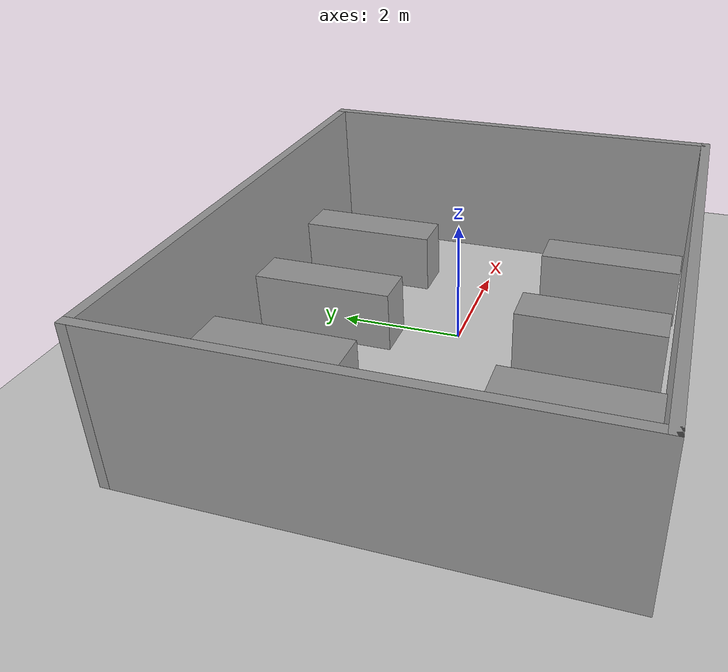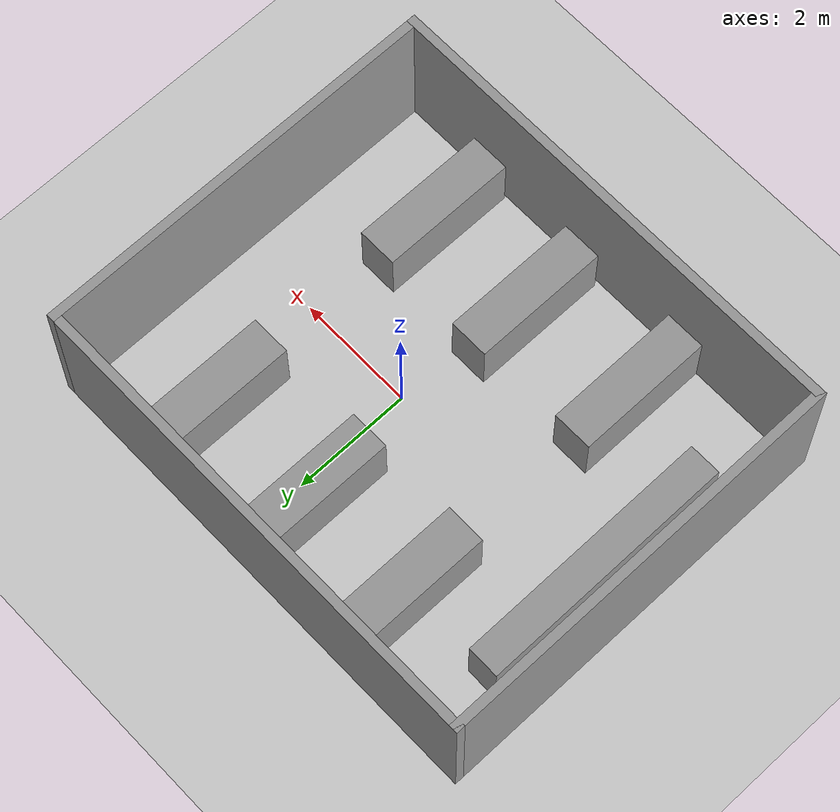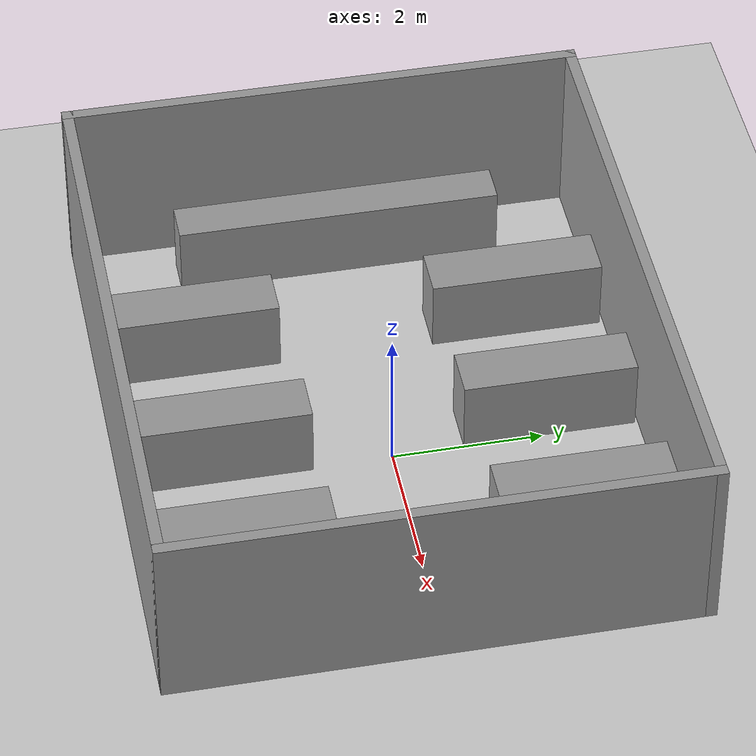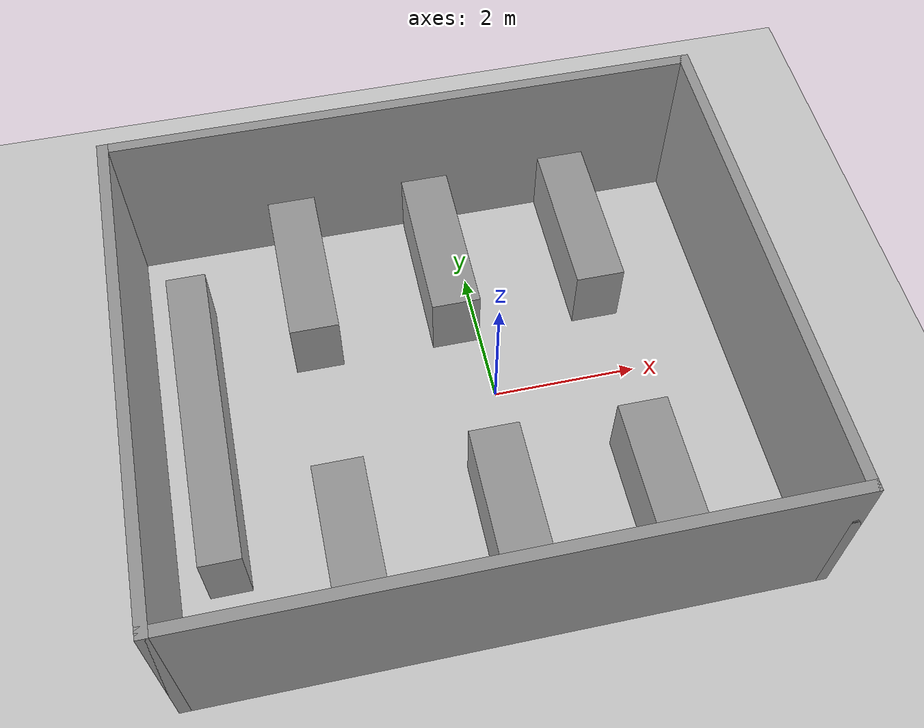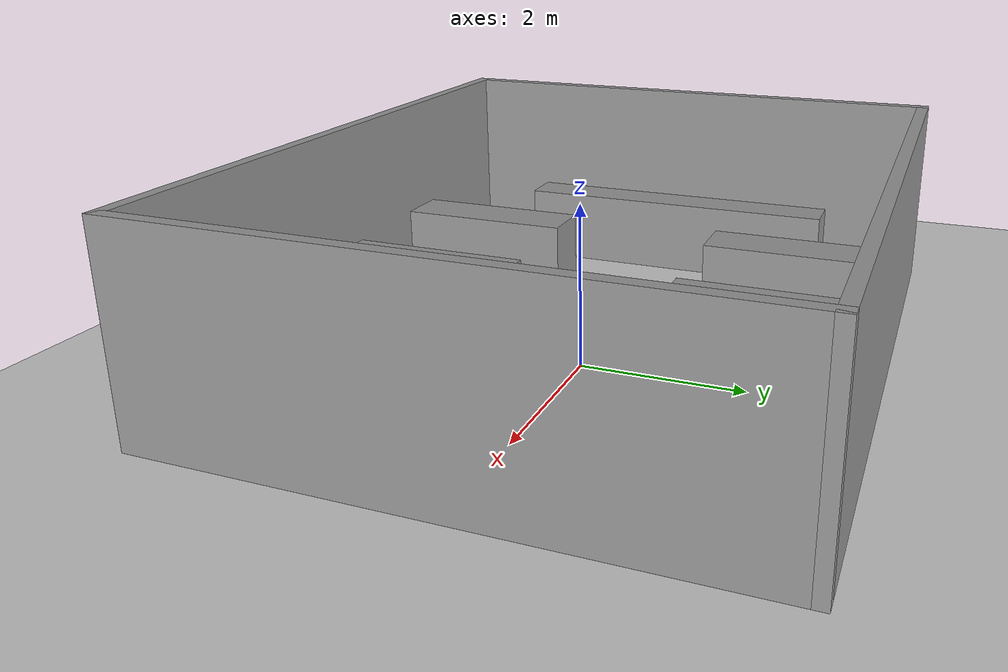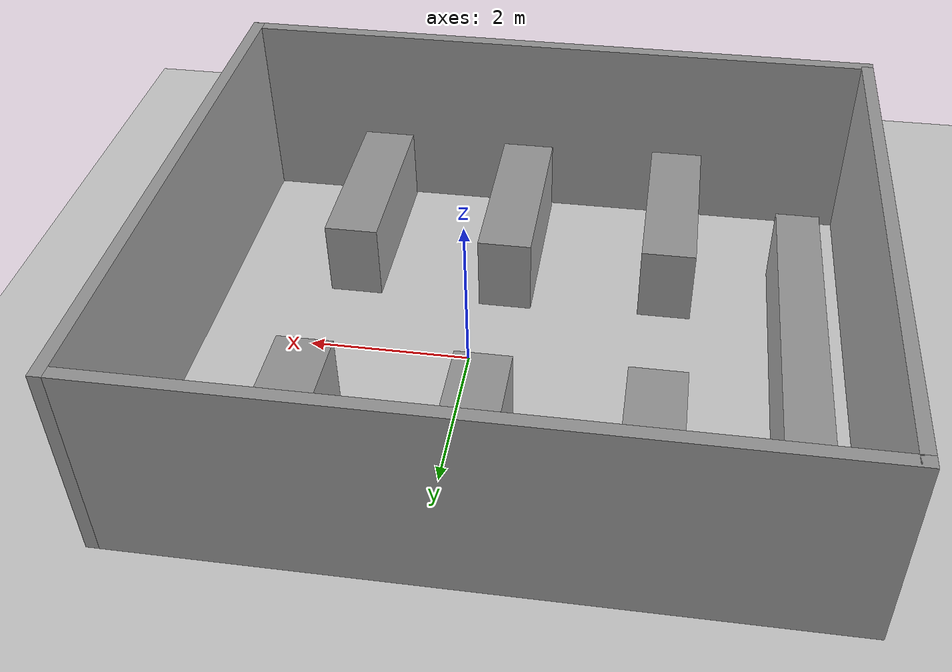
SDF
<sdf version="1.7">
 <world name="default">
  <model name="fixed_camera">
   <static>true</static>
   <link name="camera_link">
    <pose>0 0 10 0 1.57 0</pose>
    <sensor name="camera_sensor" type="camera">
     <camera name="camera">
      <horizontal_fov>1.3962634</horizontal_fov>
      <image><width>800</width><height>600</height><format>R8G8B8</format></image>
      <clip><near>0.1</near><far>100</far></clip>
     </camera>
     <always_on>true</always_on>
     <update_rate>30.0</update_rate>
     <visualize>true</visualize>
     <plugin name="camera_controller" filename="libgazebo_ros_camera.so">
      <ros><namespace>/gazebo</namespace><argument>/fixed_camera/image_raw</argument></ros>
      <camera_name>fixed_camera</camera_name>
      <image_topic_name>image_raw</image_topic_name>
      <camera_info_topic_name>camera_info</camera_info_topic_name>
     </plugin>
    </sensor>
   </link>
  </model>
  <light name="sun" type="directional">
   <pose>0 0 10 0 -0 0</pose>
   <diffuse>0.8 0.8 0.8 1</diffuse>
   <specular>0.2 0.2 0.2 1</specular>
   <attenuation>
    <range>1000</range>
    <constant>0.9</constant>
    <linear>0.01</linear>
    <quadratic>0.001</quadratic>
   </attenuation>
   <direction>-0.5 0.1 -0.9</direction>
   <spot><inner_angle>0</inner_angle><outer_angle>0</outer_angle><falloff>0</falloff></spot>
  </light>
  <model name="ground_plane">
   <static>1</static>
   <link name="link">
    <collision name="collision">
     <geometry><plane><normal>0 0 1</normal><size>100 100</size></plane></geometry>
     <surface>
      <contact><collide_bitmask>65535</collide_bitmask></contact>
      <friction><ode><mu>100</mu><mu2>50</mu2></ode></friction>
     </surface>
    </collision>
    <visual name="visual">
     <cast_shadows>0</cast_shadows>
     <geometry><plane><normal>0 0 1</normal><size>100 100</size></plane></geometry>
     <material>
      <script><uri>file://media/materials/scripts/gazebo.material</uri><name>Gazebo/Grey</name></script>
     </material>
    </visual>
   </link>
  </model>
  <gravity>0 0 -9.8</gravity>
  <magnetic_field>6e-06 2.3e-05 -4.2e-05</magnetic_field>
  <atmosphere type="adiabatic"/>
  <physics type="ode">
   <max_step_size>0.001</max_step_size>
   <real_time_factor>1</real_time_factor>
   <real_time_update_rate>1000</real_time_update_rate>
  </physics>
  <scene><ambient>0.4 0.4 0.4 1</ambient><background>0.7 0.7 0.7 1</background><shadows>1</shadows></scene>
  <audio><device>default</device></audio>
  <spherical_coordinates>
   <surface_model>EARTH_WGS84</surface_model>
   <latitude_deg>0</latitude_deg>
   <longitude_deg>0</longitude_deg>
   <elevation>0</elevation>
   <heading_deg>0</heading_deg>
  </spherical_coordinates>
  <model name="square_picking">
   <pose>-0.614 -0.066739 0 0 -0 0</pose>
   <link name="Wall_0">
    <collision name="Wall_0_Collision">
     <geometry><box><size>8.25 0.15 2.5</size></box></geometry>
     <pose>0 0 1.25 0 -0 0</pose>
    </collision>
    <visual name="Wall_0_Visual">
     <pose>0 0 1.25 0 -0 0</pose>
     <geometry><box><size>8.25 0.15 2.5</size></box></geometry>
     <material>
      <script><uri>file://media/materials/scripts/gazebo.material</uri><name>Gazebo/Grey</name></script>
      <ambient>1 1 1 1</ambient>
     </material>
     <meta><layer>0</layer></meta>
    </visual>
    <pose>-0 -3.425 0 0 -0 0</pose>
   </link>
   <link name="Wall_4">
    <collision name="Wall_4_Collision">
     <geometry><box><size>7 0.15 2.5</size></box></geometry>
     <pose>0 0 1.25 0 -0 0</pose>
    </collision>
    <visual name="Wall_4_Visual">
     <pose>0 0 1.25 0 -0 0</pose>
     <geometry><box><size>7 0.15 2.5</size></box></geometry>
     <material>
      <script><uri>file://media/materials/scripts/gazebo.material</uri><name>Gazebo/Grey</name></script>
      <ambient>1 1 1 1</ambient>
     </material>
     <meta><layer>0</layer></meta>
    </visual>
    <pose>4.05 0 0 0 -0 1.5708</pose>
   </link>
   <link name="Wall_5">
    <collision name="Wall_5_Collision">
     <geometry><box><size>8.25 0.15 2.5</size></box></geometry>
     <pose>0 0 1.25 0 -0 0</pose>
    </collision>
    <visual name="Wall_5_Visual">
     <pose>0 0 1.25 0 -0 0</pose>
     <geometry><box><size>8.25 0.15 2.5</size></box></geometry>
     <material>
      <script><uri>file://media/materials/scripts/gazebo.material</uri><name>Gazebo/Grey</name></script>
      <ambient>1 1 1 1</ambient>
     </material>
     <meta><layer>0</layer></meta>
    </visual>
    <pose>-0 3.425 0 0 -0 3.14159</pose>
   </link>
   <link name="Wall_6">
    <collision name="Wall_6_Collision">
     <geometry><box><size>7 0.15 2.5</size></box></geometry>
     <pose>0 0 1.25 0 -0 0</pose>
    </collision>
    <visual name="Wall_6_Visual">
     <pose>0 0 1.25 0 -0 0</pose>
     <geometry><box><size>7 0.15 2.5</size></box></geometry>
     <material>
      <script><uri>file://media/materials/scripts/gazebo.material</uri><name>Gazebo/Grey</name></script>
      <ambient>1 1 1 1</ambient>
     </material>
     <meta><layer>0</layer></meta>
    </visual>
    <pose>-4.05 0 0 0 -0 -1.5708</pose>
   </link>
   <static>1</static>
  </model>
  <model name="unit_box">
   <pose>1.70771 2.12799 0.5 -0 -0 -0.002408</pose>
   <link name="link">
    <inertial>
     <mass>1</mass>
     <inertia>
      <ixx>0.166667</ixx>
      <ixy>0</ixy>
      <ixz>0</ixz>
      <iyy>0.166667</iyy>
      <iyz>0</iyz>
      <izz>0.166667</izz>
     </inertia>
    </inertial>
    <collision name="collision"><geometry><box><size>0.672727 2.29215 1</size></box></geometry></collision>
    <visual name="visual">
     <geometry><box><size>0.672727 2.29215 1</size></box></geometry>
     <material>
      <script><name>Gazebo/Grey</name><uri>file://media/materials/scripts/gazebo.material</uri></script>
     </material>
    </visual>
   </link>
  </model>
  <model name="unit_box_clone">
   <pose>1.68174 -2.22925 0.499963 3.2e-05 -0 -0.002014</pose>
   <link name="link">
    <inertial>
     <mass>1</mass>
     <inertia>
      <ixx>0.166667</ixx>
      <ixy>0</ixy>
      <ixz>0</ixz>
      <iyy>0.166667</iyy>
      <iyz>0</iyz>
      <izz>0.166667</izz>
     </inertia>
    </inertial>
    <collision name="collision"><geometry><box><size>0.672727 2.29215 1</size></box></geometry></collision>
    <visual name="visual">
     <geometry><box><size>0.672727 2.29215 1</size></box></geometry>
     <material>
      <script><name>Gazebo/Grey</name><uri>file://media/materials/scripts/gazebo.material</uri></script>
     </material>
    </visual>
   </link>
  </model>
  <model name="unit_box_clone_0">
   <pose>-0.353763 2.09687 0.499963 3.2e-05 -0 -0.002058</pose>
   <link name="link">
    <inertial>
     <mass>1</mass>
     <inertia>
      <ixx>0.166667</ixx>
      <ixy>0</ixy>
      <ixz>0</ixz>
      <iyy>0.166667</iyy>
      <iyz>0</iyz>
      <izz>0.166667</izz>
     </inertia>
    </inertial>
    <collision name="collision"><geometry><box><size>0.672727 2.29215 1</size></box></geometry></collision>
    <visual name="visual">
     <geometry><box><size>0.672727 2.29215 1</size></box></geometry>
     <material>
      <script><name>Gazebo/Grey</name><uri>file://media/materials/scripts/gazebo.material</uri></script>
     </material>
    </visual>
   </link>
  </model>
  <model name="unit_box_clone_1">
   <pose>-0.296582 -2.19156 0.499963 -3.2e-05 -0 -0.002082</pose>
   <link name="link">
    <inertial>
     <mass>1</mass>
     <inertia>
      <ixx>0.166667</ixx>
      <ixy>0</ixy>
      <ixz>0</ixz>
      <iyy>0.166667</iyy>
      <iyz>0</iyz>
      <izz>0.166667</izz>
     </inertia>
    </inertial>
    <collision name="collision"><geometry><box><size>0.672727 2.29215 1</size></box></geometry></collision>
    <visual name="visual">
     <geometry><box><size>0.672727 2.29215 1</size></box></geometry>
     <material>
      <script><name>Gazebo/Grey</name><uri>file://media/materials/scripts/gazebo.material</uri></script>
     </material>
    </visual>
   </link>
  </model>
  <model name="unit_box_clone_2">
   <pose>-2.32072 2.08541 0.499963 3.2e-05 -0 -0.002105</pose>
   <link name="link">
    <inertial>
     <mass>1</mass>
     <inertia>
      <ixx>0.166667</ixx>
      <ixy>0</ixy>
      <ixz>0</ixz>
      <iyy>0.166667</iyy>
      <iyz>0</iyz>
      <izz>0.166667</izz>
     </inertia>
    </inertial>
    <collision name="collision"><geometry><box><size>0.672727 2.29215 1</size></box></geometry></collision>
    <visual name="visual">
     <geometry><box><size>0.672727 2.29215 1</size></box></geometry>
     <material>
      <script><name>Gazebo/Grey</name><uri>file://media/materials/scripts/gazebo.material</uri></script>
     </material>
    </visual>
   </link>
  </model>
  <model name="unit_box_clone_3">
   <pose>-2.34629 -2.26684 0.499999 0 -2e-06 -7.4e-05</pose>
   <link name="link">
    <inertial>
     <mass>1</mass>
     <inertia>
      <ixx>0.166667</ixx>
      <ixy>0</ixy>
      <ixz>0</ixz>
      <iyy>0.166667</iyy>
      <iyz>0</iyz>
      <izz>0.166667</izz>
     </inertia>
    </inertial>
    <collision name="collision"><geometry><box><size>0.672727 2.29215 1</size></box></geometry></collision>
    <visual name="visual">
     <geometry><box><size>0.672727 2.29215 1</size></box></geometry>
     <material>
      <script><name>Gazebo/Grey</name><uri>file://media/materials/scripts/gazebo.material</uri></script>
     </material>
    </visual>
   </link>
  </model>
  <model name="unit_box_clone_3_clone">
   <pose>-3.94685 -0.008262 0.498872 -0.000518 2e-06 0.000808</pose>
   <link name="link">
    <inertial>
     <mass>1</mass>
     <inertia>
      <ixx>0.166667</ixx>
      <ixy>0</ixy>
      <ixz>0</ixz>
      <iyy>0.166667</iyy>
      <iyz>0</iyz>
      <izz>0.166667</izz>
     </inertia>
    </inertial>
    <collision name="collision"><geometry><box><size>0.544784 4.36501 1</size></box></geometry></collision>
    <visual name="visual">
     <geometry><box><size>0.544784 4.36501 1</size></box></geometry>
     <material>
      <script><name>Gazebo/Grey</name><uri>file://media/materials/scripts/gazebo.material</uri></script>
     </material>
    </visual>
   </link>
  </model>
  <light name="user_point_light_0" type="point">
   <pose>-0.349542 7.00171 1 0 -0 0</pose>
   <diffuse>0.5 0.5 0.5 1</diffuse>
   <specular>0.1 0.1 0.1 1</specular>
   <attenuation>
    <range>20</range>
    <constant>0.5</constant>
    <linear>0.01</linear>
    <quadratic>0.001</quadratic>
   </attenuation>
   <cast_shadows>0</cast_shadows>
   <direction>0 0 -1</direction>
  </light>
 </world>
</sdf>
